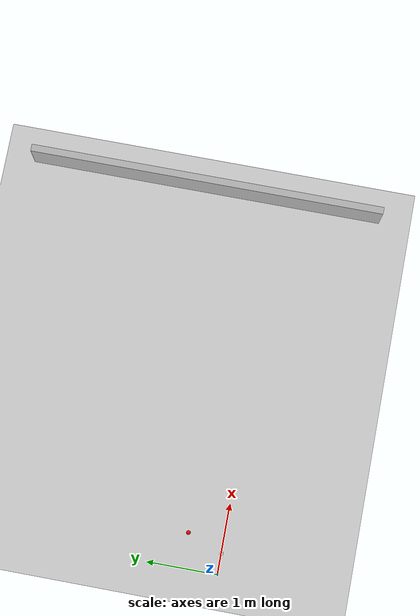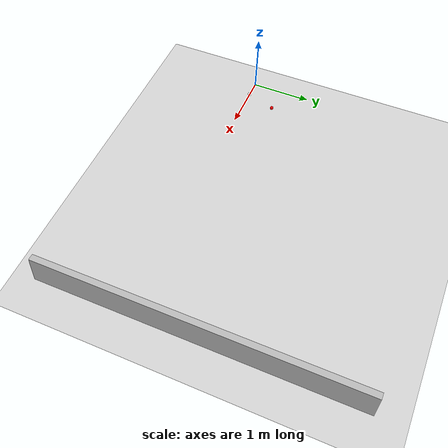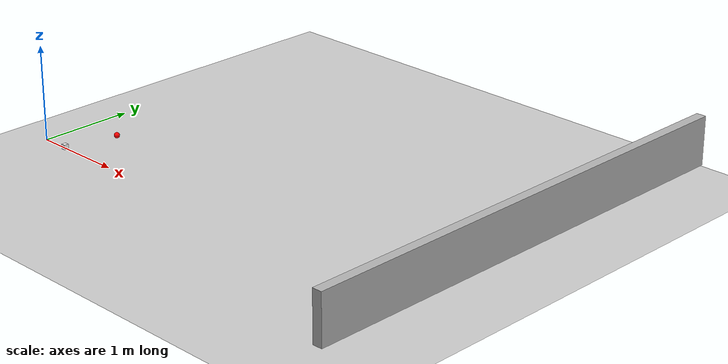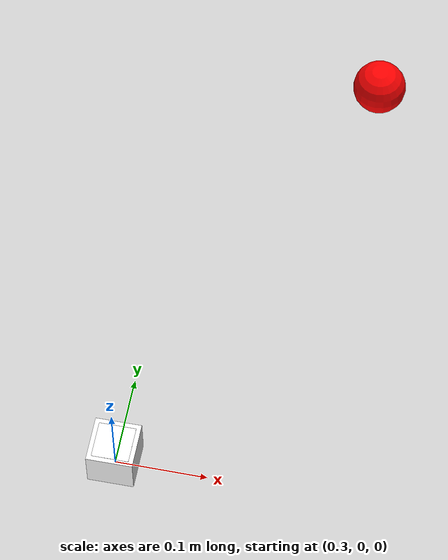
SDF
<?xml version="1.0" ?>
<sdf version='1.10'>
  <world name='empty'>
    <physics name='1ms' type='ignored'>
      <max_step_size>0.0050000000000000001</max_step_size>
      <real_time_factor>1</real_time_factor>
      <real_time_update_rate>500</real_time_update_rate>
    </physics>
    <plugin name='gz::sim::systems::Physics' filename='gz-sim-physics-system'/>
    <plugin name='gz::sim::systems::UserCommands' filename='gz-sim-user-commands-system'/>
    <plugin name='gz::sim::systems::SceneBroadcaster' filename='gz-sim-scene-broadcaster-system'/>
    <plugin name='gz::sim::systems::Contact' filename='gz-sim-contact-system'/>
    <plugin name="gz::sim::systems::Sensors" filename="gz-sim-sensors-system">
      <render_engine>ogre2</render_engine>
    </plugin>
    <gravity>0 0 -9.8000000000000007</gravity>
    <magnetic_field>5.5644999999999998e-06 2.2875799999999999e-05 -4.2388400000000002e-05</magnetic_field>
    <atmosphere type='adiabatic'/>
    <scene>
      <ambient>0.400000006 0.400000006 0.400000006 1</ambient>
      <background>0.699999988 0.699999988 0.699999988 1</background>
      <shadows>true</shadows>
    </scene>
    <gui>
      <camera name='user_camera'>
        <pose>0 0 10 0 -1.5700000000004057 0</pose>
      </camera>
    </gui>

    <model name='ground_plan_a'>
      <static>true</static>
      <link name='link'>
        <collision name='collision'>
          <geometry>
            <plane>
              <normal>0 0 1</normal>
              <size>100 100</size>
            </plane>
          </geometry>
          <surface>
            <friction>
              <ode/>
            </friction>
            <bounce/>
            <contact/>
          </surface>
        </collision>
        <visual name='visual'>
          <geometry>
            <plane>
              <normal>0 0 1</normal>
              <size>100 100</size>
            </plane>
          </geometry>
          <material>
            <ambient>0.800000012 0.800000012 0.800000012 1</ambient>
            <diffuse>0.800000012 0.800000012 0.800000012 1</diffuse>
            <specular>0.800000012 0.800000012 0.800000012 1</specular>
          </material>
        </visual>
        <pose>0 0 0 0 0 0</pose>
        <inertial>
          <pose>0 0 0 0 0 0</pose>
          <mass>1</mass>
          <inertia>
            <ixx>1</ixx>
            <ixy>0</ixy>
            <ixz>0</ixz>
            <iyy>1</iyy>
            <iyz>0</iyz>
            <izz>1</izz>
          </inertia>
        </inertial>
        <enable_wind>false</enable_wind>
      </link>
      <pose>0 0 0 0 0 0</pose>
      <self_collide>false</self_collide>
    </model>
    <model name='box'>
      <pose>5.3351101875305176 1.1423105628707289 0.49999964374511835 2.2249889111800282e-07 3.5031224552452505e-17 -6.3657622294056747e-17</pose>
      <link name='box_link'>
        <inertial>
          <inertia>
            <ixx>0.16666</ixx>
            <ixy>0</ixy>
            <ixz>0</ixz>
            <iyy>0.16666</iyy>
            <iyz>0</iyz>
            <izz>0.16666</izz>
          </inertia>
          <mass>1</mass>
          <pose>0 0 0 0 0 0</pose>
        </inertial>
        <collision name='box_collision'>
          <geometry>
            <box>
              <size>0.10000000000000001 5 0.5</size>
            </box>
          </geometry>
          <surface>
            <friction>
              <ode/>
            </friction>
            <bounce/>
            <contact/>
          </surface>
        </collision>
        <visual name='box_visual'>
          <geometry>
            <box>
              <size>0.10000000000000001 5 0.5</size>
            </box>
          </geometry>
          <material>
            <ambient>0.300000012 0.300000012 0.300000012 1</ambient>
            <diffuse>0.699999988 0.699999988 0.699999988 1</diffuse>
            <specular>1 1 1 1</specular>
          </material>
        </visual>
        <pose>0 0 0 0 0 0</pose>
        <enable_wind>false</enable_wind>
      </link>
      <static>false</static>
      <self_collide>false</self_collide>
    </model>

    <include>
      <uri>model://red_ball</uri>
      <name>red_ball_1</name>
      <pose>0.5 0.5 0.02 0 0 0</pose>
    </include>

    <include>
      <uri>model://aruco_cube</uri>
      <name>aruco_cube_1</name>
      <pose>0.3 0 0.02 0 0 0</pose>
    </include>

    <light name='sun' type='directional'>
      <pose>0 0 10 0 0 0</pose>
      <cast_shadows>true</cast_shadows>
      <intensity>1</intensity>
      <direction>-0.5 0.10000000000000001 -0.90000000000000002</direction>
      <diffuse>0.800000012 0.800000012 0.800000012 1</diffuse>
      <specular>0.200000003 0.200000003 0.200000003 1</specular>
      <attenuation>
        <range>1000</range>
        <linear>0.0099999997764825821</linear>
        <constant>0.89999997615814209</constant>
        <quadratic>0.0010000000474974513</quadratic>
      </attenuation>
      <spot>
        <inner_angle>0</inner_angle>
        <outer_angle>0</outer_angle>
        <falloff>0</falloff>
      </spot>
    </light>
  </world>
</sdf>

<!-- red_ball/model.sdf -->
<sdf version='1.6'>
  <model name='red_ball'>
    <link name='link_3'>
      <inertial>
        <mass>0.03</mass>
        <inertia>
          <ixx>0.166667</ixx>
          <ixy>0</ixy>
          <ixz>0</ixz>
          <iyy>0.166667</iyy>
          <iyz>0</iyz>
          <izz>0.166667</izz>
        </inertia>
        <pose frame=''>0 0 0 0 -0 0</pose>
      </inertial>
      <pose frame=''>0 0 0.03 0 -0 0</pose>
      <gravity>1</gravity>
      <self_collide>0</self_collide>
      <kinematic>0</kinematic>
      <enable_wind>0</enable_wind>
      <visual name='visual'>
        <pose frame=''>0 0 0 0 -0 0</pose>
        <geometry>
          <sphere>
            <radius>0.03</radius>
          </sphere>
        </geometry>
        <material>
          <lighting>1</lighting>
          <script>
            <uri>file://media/materials/scripts/gazebo.material</uri>
            <name>Gazebo/Grey</name>
          </script>
          <shader type='pixel'>
            <normal_map>__default__</normal_map>
          </shader>
          <ambient>1 0 0 0</ambient>
          <diffuse>0.7 0.7 0.7 1</diffuse>
          <specular>0.01 0.01 0.01 1</specular>
          <emissive>0 0 0 1</emissive>
        </material>
        <transparency>0</transparency>
        <cast_shadows>1</cast_shadows>
      </visual>
      <collision name='collision'>
        <laser_retro>0</laser_retro>
        <max_contacts>10</max_contacts>
        <pose frame=''>0 0 0 0 -0 0</pose>
        <geometry>
          <box>
            <size>0.06 0.06 0.06</size>
          </box>
        </geometry>
        <surface>
          <friction>
            <ode>
              <mu>1</mu>
              <mu2>1</mu2>
              <fdir1>0 0 0</fdir1>
              <slip1>0</slip1>
              <slip2>0</slip2>
            </ode>
            <torsional>
              <coefficient>1</coefficient>
              <patch_radius>0</patch_radius>
              <surface_radius>0</surface_radius>
              <use_patch_radius>1</use_patch_radius>
              <ode>
                <slip>0</slip>
              </ode>
            </torsional>
          </friction>
          <bounce>
            <restitution_coefficient>0</restitution_coefficient>
            <threshold>1e+06</threshold>
          </bounce>
          <contact>
            <collide_without_contact>0</collide_without_contact>
            <collide_without_contact_bitmask>1</collide_without_contact_bitmask>
            <collide_bitmask>1</collide_bitmask>
            <ode>
              <soft_cfm>0</soft_cfm>
              <soft_erp>0.2</soft_erp>
              <kp>1e+13</kp>
              <kd>1</kd>
              <max_vel>0.01</max_vel>
              <min_depth>0</min_depth>
            </ode>
            <bullet>
              <split_impulse>1</split_impulse>
              <split_impulse_penetration_threshold>-0.01</split_impulse_penetration_threshold>
              <soft_cfm>0</soft_cfm>
              <soft_erp>0.2</soft_erp>
              <kp>1e+13</kp>
              <kd>1</kd>
            </bullet>
          </contact>
        </surface>
      </collision>
    </link>
    <static>0</static>
    <allow_auto_disable>1</allow_auto_disable>
  </model>
</sdf>

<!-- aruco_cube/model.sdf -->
<sdf version='1.9'>
  <model name='aruco_cube'>
    <link name="cube_link">

        <!-- 질량 및 관성 정보 -->
        <inertial>
            <mass>0.05</mass>
            <inertia>
                <ixx>0.00002083</ixx>
                <ixy>0</ixy>
                <ixz>0</ixz>
                <iyy>0.00002083</iyy>
                <iyz>0</iyz>
                <izz>0.00002083</izz>
            </inertia>
        </inertial>

        <collision name="cube_collision">
            <geometry>
                <box>
                    <size>0.05 0.05 0.05</size>
                </box>
            </geometry>
            <!-- 그리핑 시 미끄러짐 방지를 위한 표면 마찰력 -->
            <surface>
                <friction>
                    <ode>
                        <mu>100.0</mu>
                        <mu2>100.0</mu2>
                    </ode>
                </friction>
            </surface>
        </collision>

        <visual name="cube_visual">
            <geometry>
                <box>
                    <size>0.05 0.05 0.05</size>
                </box>
            </geometry>
            <material>
                <ambient>1 1 1 1</ambient>
                <diffuse>1 1 1 1</diffuse>
                <specular>0.1 0.1 0.1 1</specular>
            </material>
        </visual>

        <visual name="aruco_top_visual">
            <pose>0 0 0.0251 0 0 0</pose>
            <geometry>
                <box>
                    <size>0.04 0.04 0.0001</size>
                </box>
            </geometry>
            <material>
                <ambient>1 1 1 1</ambient>
                <diffuse>1 1 1 1</diffuse>
                <pbr>
                    <metal>
                        <!-- 절대 경로 적용 -->
                        <albedo_map>model://aruco_cube/materials/textures/aruco_0.png</albedo_map>
                        <roughness>1.0</roughness>
                        <metalness>0.0</metalness>
                    </metal>
                </pbr>
            </material>
        </visual>

    </link>
  </model>
</sdf>
